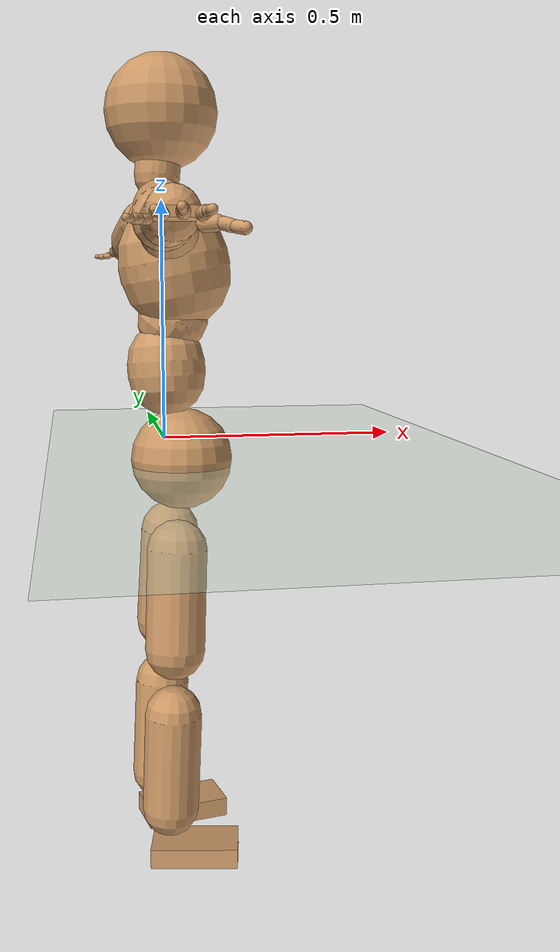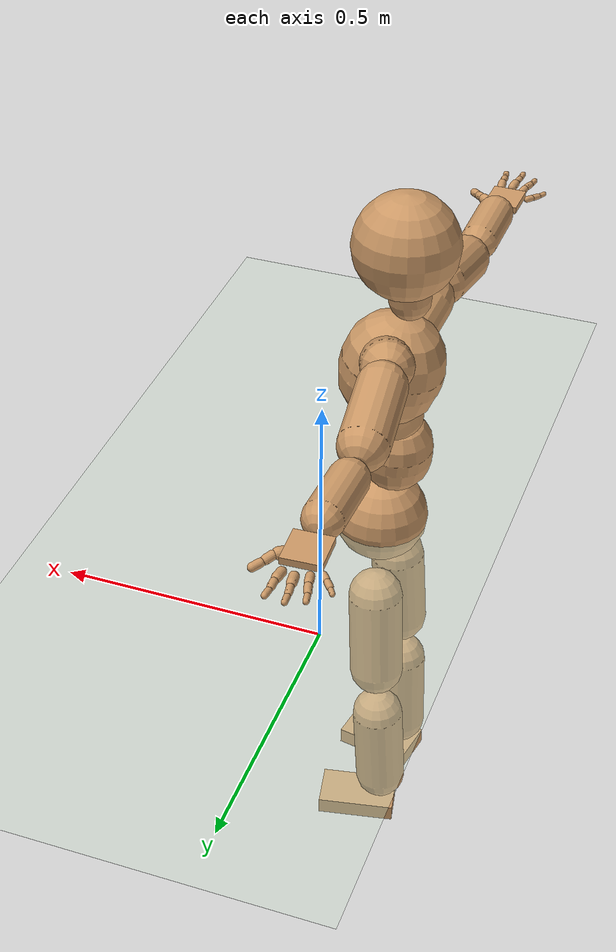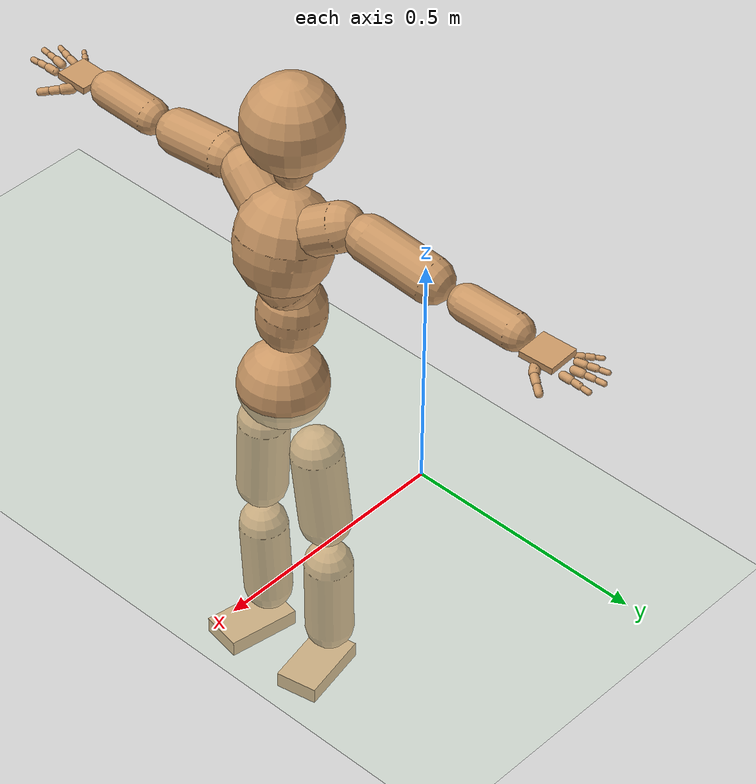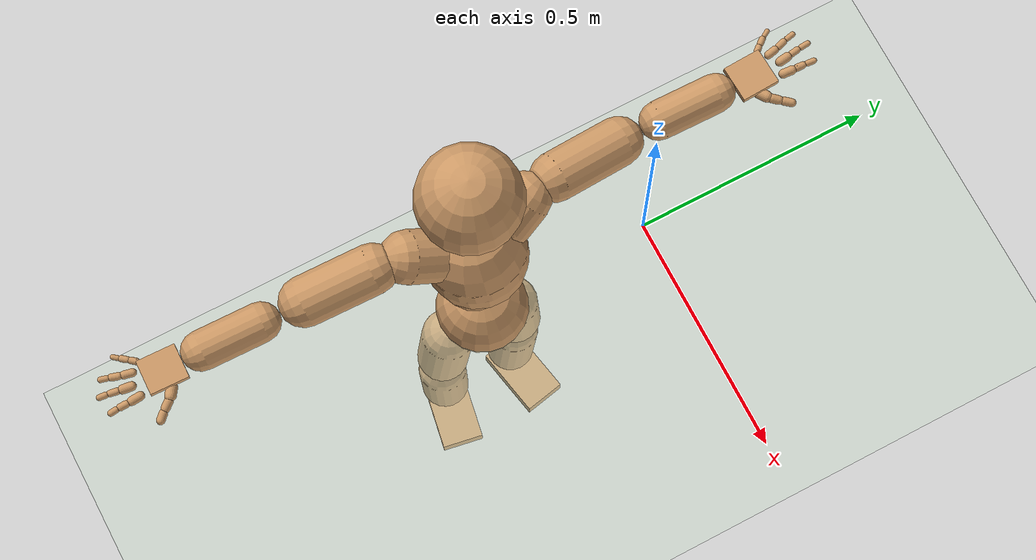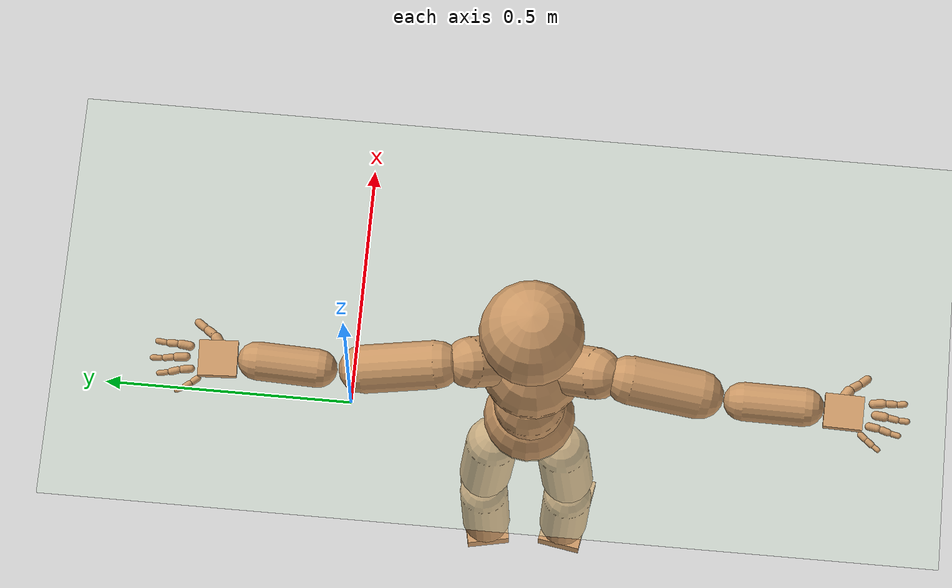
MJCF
<mujoco model="humanoid">
  <compiler coordinate="local" angle="radian"/>
  <default>
    <joint damping="0.0" armature="0.01" stiffness="0.0" limited="true"/>
    <geom conaffinity="1" condim="3" contype="7" margin="0.001" rgba="0.8 0.6 .4 1"/>
  </default>
  <asset>
    <texture type="skybox" builtin="gradient" rgb1=".4 .5 .6" rgb2="0 0 0" width="100" height="100"/>
    <texture builtin="flat" height="1278" mark="cross" markrgb="1 1 1" name="texgeom" random="0.01" rgb1="0.8 0.6 0.4" rgb2="0.8 0.6 0.4" type="cube" width="127"/>
    <texture builtin="checker" height="100" name="texplane" rgb1="0 0 0" rgb2="0.8 0.8 0.8" type="2d" width="100"/>
    <material name="MatPlane" reflectance="0.5" shininess="1" specular="1" texrepeat="60 60" texture="texplane"/>
    <material name="geom" texture="texgeom" texuniform="true"/>
  </asset>
  <worldbody>
    <light cutoff="100" diffuse="1 1 1" dir="-0 0 -1.3" directional="true" exponent="1" pos="0 0 1.3" specular=".1 .1 .1"/>
    <geom conaffinity="1" condim="3" name="floor" pos="0 0 0" rgba="0.8 0.9 0.8 1" size="100 100 .2" type="plane" material="MatPlane"/>
    <body name="Pelvis" pos="0.0005 -0.3611 0.0106">
      <freejoint name="Pelvis"/>
      <geom type="sphere" contype="1" conaffinity="1" density="500" size="0.0924" pos="0.0000 0.0000 0.0000" name="Pelvis"/>
      <body name="L_Hip" pos="-0.0134 0.068 -0.0869">
        <joint name="L_Hip_x" type="hinge" pos="0 0 0" axis="1 0 0" stiffness="800" damping="80" armature="0.02" range="-180.0000 180.0000"/>
        <joint name="L_Hip_y" type="hinge" pos="0 0 0" axis="0 1 0" stiffness="800" damping="80" armature="0.02" range="-180.0000 180.0000"/>
        <joint name="L_Hip_z" type="hinge" pos="0 0 0" axis="0 0 1" stiffness="800" damping="80" armature="0.02" range="-180.0000 180.0000"/>
        <geom type="capsule" contype="1" conaffinity="1" density="500" fromto="-0.0037 0.0043 -0.0612 -0.0147 0.0172 -0.2447" size="0.054" name="L_Hip"/>
        <body name="L_Knee" pos="-0.0184 0.0215 -0.3059">
          <joint name="L_Knee_x" type="hinge" pos="0 0 0" axis="1 0 0" stiffness="800" damping="80" armature="0.02" range="-180.0000 180.0000"/>
          <joint name="L_Knee_y" type="hinge" pos="0 0 0" axis="0 1 0" stiffness="800" damping="80" armature="0.02" range="-180.0000 180.0000"/>
          <joint name="L_Knee_z" type="hinge" pos="0 0 0" axis="0 0 1" stiffness="800" damping="80" armature="0.02" range="-180.0000 180.0000"/>
          <geom type="capsule" contype="1" conaffinity="1" density="500" fromto="-0.0031 -0.0023 -0.0619 -0.0124 -0.0090 -0.2477" size="0.0512" name="L_Knee"/>
          <body name="L_Ankle" pos="-0.0154 -0.0113 -0.3097">
            <joint name="L_Ankle_x" type="hinge" pos="0 0 0" axis="1 0 0" stiffness="800" damping="80" armature="0.02" range="-180.0000 180.0000"/>
            <joint name="L_Ankle_y" type="hinge" pos="0 0 0" axis="0 1 0" stiffness="800" damping="80" armature="0.02" range="-180.0000 180.0000"/>
            <joint name="L_Ankle_z" type="hinge" pos="0 0 0" axis="0 0 1" stiffness="800" damping="80" armature="0.02" range="-180.0000 180.0000"/>
            <geom type="box" contype="1" conaffinity="1" density="500" pos="0.0495 0.0099 -0.0182" size="0.0789 0.0451 0.018" quat="0.9951 0.0000 0.0000 0.0989" name="L_Ankle"/>
            <body name="L_Toe" pos="0.099 0.0199 -0.0365">
              <joint name="L_Toe_x" type="hinge" pos="0 0 0" axis="1 0 0" stiffness="500" damping="50" armature="0.02" range="-180.0000 180.0000"/>
              <joint name="L_Toe_y" type="hinge" pos="0 0 0" axis="0 1 0" stiffness="500" damping="50" armature="0.02" range="-180.0000 180.0000"/>
              <joint name="L_Toe_z" type="hinge" pos="0 0 0" axis="0 0 1" stiffness="500" damping="50" armature="0.02" range="-180.0000 180.0000"/>
              <geom type="box" contype="1" conaffinity="1" density="500" pos="0.0000 0.0000 0.0199" size="0.0009 0.0023 0.001" quat="0.9943 0.0000 0.0000 0.1064" name="L_Toe"/>
            </body>
          </body>
        </body>
      </body>
      <body name="R_Hip" pos="-0.0147 -0.0671 -0.0935">
        <joint name="R_Hip_x" type="hinge" pos="0 0 0" axis="1 0 0" stiffness="800" damping="80" armature="0.02" range="-180.0000 180.0000"/>
        <joint name="R_Hip_y" type="hinge" pos="0 0 0" axis="0 1 0" stiffness="800" damping="80" armature="0.02" range="-180.0000 180.0000"/>
        <joint name="R_Hip_z" type="hinge" pos="0 0 0" axis="0 0 1" stiffness="800" damping="80" armature="0.02" range="-180.0000 180.0000"/>
        <geom type="capsule" contype="1" conaffinity="1" density="500" fromto="-0.0025 -0.0051 -0.0602 -0.0101 -0.0203 -0.2410" size="0.0538" name="R_Hip"/>
        <body name="R_Knee" pos="-0.0126 -0.0253 -0.3012">
          <joint name="R_Knee_x" type="hinge" pos="0 0 0" axis="1 0 0" stiffness="800" damping="80" armature="0.02" range="-180.0000 180.0000"/>
          <joint name="R_Knee_y" type="hinge" pos="0 0 0" axis="0 1 0" stiffness="800" damping="80" armature="0.02" range="-180.0000 180.0000"/>
          <joint name="R_Knee_z" type="hinge" pos="0 0 0" axis="0 0 1" stiffness="800" damping="80" armature="0.02" range="-180.0000 180.0000"/>
          <geom type="capsule" contype="1" conaffinity="1" density="500" fromto="-0.0023 0.0014 -0.0603 -0.0092 0.0055 -0.2413" size="0.0512" name="R_Knee"/>
          <body name="R_Ankle" pos="-0.0115 0.0069 -0.3017">
            <joint name="R_Ankle_x" type="hinge" pos="0 0 0" axis="1 0 0" stiffness="800" damping="80" armature="0.02" range="-180.0000 180.0000"/>
            <joint name="R_Ankle_y" type="hinge" pos="0 0 0" axis="0 1 0" stiffness="800" damping="80" armature="0.02" range="-180.0000 180.0000"/>
            <joint name="R_Ankle_z" type="hinge" pos="0 0 0" axis="0 0 1" stiffness="800" damping="80" armature="0.02" range="-180.0000 180.0000"/>
            <geom type="box" contype="1" conaffinity="1" density="500" pos="0.0464 -0.0081 -0.0200" size="0.0789 0.0451 0.018" quat="0.9963 0.0000 0.0000 -0.0861" name="R_Ankle"/>
            <body name="R_Toe" pos="0.0928 -0.0162 -0.04">
              <joint name="R_Toe_x" type="hinge" pos="0 0 0" axis="1 0 0" stiffness="500" damping="50" armature="0.02" range="-180.0000 180.0000"/>
              <joint name="R_Toe_y" type="hinge" pos="0 0 0" axis="0 1 0" stiffness="500" damping="50" armature="0.02" range="-180.0000 180.0000"/>
              <joint name="R_Toe_z" type="hinge" pos="0 0 0" axis="0 0 1" stiffness="500" damping="50" armature="0.02" range="-180.0000 180.0000"/>
              <geom type="box" contype="1" conaffinity="1" density="500" pos="0.0000 0.0000 0.0216" size="0.0009 0.0023 0.001" quat="0.9973 0.0000 0.0000 -0.0741" name="R_Toe"/>
            </body>
          </body>
        </body>
      </body>
      <body name="Torso" pos="-0.0222 -0.0048 0.0978">
        <joint name="Torso_x" type="hinge" pos="0 0 0" axis="1 0 0" stiffness="1000" damping="100" armature="0.02" range="-180.0000 180.0000"/>
        <joint name="Torso_y" type="hinge" pos="0 0 0" axis="0 1 0" stiffness="1000" damping="100" armature="0.02" range="-180.0000 180.0000"/>
        <joint name="Torso_z" type="hinge" pos="0 0 0" axis="0 0 1" stiffness="1000" damping="100" armature="0.02" range="-180.0000 180.0000"/>
        <geom type="capsule" contype="1" conaffinity="1" density="500" fromto="-0.0041 0.0056 0.0789 -0.0027 0.0037 0.0526" size="0.0701" name="Torso"/>
        <body name="Spine" pos="-0.0069 0.0093 0.1315">
          <joint name="Spine_x" type="hinge" pos="0 0 0" axis="1 0 0" stiffness="1000" damping="100" armature="0.02" range="-180.0000 180.0000"/>
          <joint name="Spine_y" type="hinge" pos="0 0 0" axis="0 1 0" stiffness="1000" damping="100" armature="0.02" range="-180.0000 180.0000"/>
          <joint name="Spine_z" type="hinge" pos="0 0 0" axis="0 0 1" stiffness="1000" damping="100" armature="0.02" range="-180.0000 180.0000"/>
          <geom type="capsule" contype="1" conaffinity="1" density="500" fromto="0.0203 -0.0032 0.0274 0.0135 -0.0021 0.0183" size="0.0605" name="Spine"/>
          <body name="Chest" pos="0.0339 -0.0054 0.0457">
            <joint name="Chest_x" type="hinge" pos="0 0 0" axis="1 0 0" stiffness="1000" damping="100" armature="0.02" range="-180.0000 180.0000"/>
            <joint name="Chest_y" type="hinge" pos="0 0 0" axis="0 1 0" stiffness="1000" damping="100" armature="0.02" range="-180.0000 180.0000"/>
            <joint name="Chest_z" type="hinge" pos="0 0 0" axis="0 0 1" stiffness="1000" damping="100" armature="0.02" range="-180.0000 180.0000"/>
            <geom type="capsule" contype="1" conaffinity="1" density="500" fromto="-0.0175 -0.0016 0.0847 -0.0117 -0.0011 0.0565" size="0.0984" name="Chest"/>
            <body name="Neck" pos="-0.0451 -0.0057 0.195">
              <joint name="Neck_x" type="hinge" pos="0 0 0" axis="1 0 0" stiffness="500" damping="50" armature="0.02" range="-180.0000 180.0000"/>
              <joint name="Neck_y" type="hinge" pos="0 0 0" axis="0 1 0" stiffness="500" damping="50" armature="0.02" range="-180.0000 180.0000"/>
              <joint name="Neck_z" type="hinge" pos="0 0 0" axis="0 0 1" stiffness="500" damping="50" armature="0.02" range="-180.0000 180.0000"/>
              <geom type="capsule" contype="1" conaffinity="1" density="500" fromto="0.0023 0.0018 0.0276 0.0093 0.0071 0.1105" size="0.0398" name="Neck"/>
              <body name="Head" pos="0.0116 0.0089 0.1381">
                <joint name="Head_x" type="hinge" pos="0 0 0" axis="1 0 0" stiffness="500" damping="50" armature="0.02" range="-180.0000 180.0000"/>
                <joint name="Head_y" type="hinge" pos="0 0 0" axis="0 1 0" stiffness="500" damping="50" armature="0.02" range="-180.0000 180.0000"/>
                <joint name="Head_z" type="hinge" pos="0 0 0" axis="0 0 1" stiffness="500" damping="50" armature="0.02" range="-180.0000 180.0000"/>
                <geom type="sphere" contype="1" conaffinity="1" density="500" size="0.0990" pos="0.0000 0.0000 0.0000" name="Head"/>
              </body>
            </body>
            <body name="L_Thorax" pos="-0.0183 0.0513 0.1162">
              <joint name="L_Thorax_x" type="hinge" pos="0 0 0" axis="1 0 0" stiffness="500" damping="50" armature="0.02" range="-180.0000 180.0000"/>
              <joint name="L_Thorax_y" type="hinge" pos="0 0 0" axis="0 1 0" stiffness="500" damping="50" armature="0.02" range="-180.0000 180.0000"/>
              <joint name="L_Thorax_z" type="hinge" pos="0 0 0" axis="0 0 1" stiffness="500" damping="50" armature="0.02" range="-180.0000 180.0000"/>
              <geom type="capsule" contype="1" conaffinity="1" density="500" fromto="-0.0058 0.0165 0.0092 -0.0231 0.0659 0.0368" size="0.0493" name="L_Thorax"/>
              <body name="L_Shoulder" pos="-0.0289 0.0823 0.0461">
                <joint name="L_Shoulder_x" type="hinge" pos="0 0 0" axis="1 0 0" stiffness="500" damping="50" armature="0.02" range="-180.0000 180.0000"/>
                <joint name="L_Shoulder_y" type="hinge" pos="0 0 0" axis="0 1 0" stiffness="500" damping="50" armature="0.02" range="-180.0000 180.0000"/>
                <joint name="L_Shoulder_z" type="hinge" pos="0 0 0" axis="0 0 1" stiffness="500" damping="50" armature="0.02" range="-180.0000 180.0000"/>
                <geom type="capsule" contype="1" conaffinity="1" density="500" fromto="-0.0045 0.0468 -0.0086 -0.0181 0.1871 -0.0346" size="0.0468" name="L_Shoulder"/>
                <body name="L_Elbow" pos="-0.0226 0.2338 -0.0432">
                  <joint name="L_Elbow_x" type="hinge" pos="0 0 0" axis="1 0 0" stiffness="500" damping="50" armature="0.02" range="-720.0000 720.0000"/>
                  <joint name="L_Elbow_y" type="hinge" pos="0 0 0" axis="0 1 0" stiffness="500" damping="50" armature="0.02" range="-720.0000 720.0000"/>
                  <joint name="L_Elbow_z" type="hinge" pos="0 0 0" axis="0 0 1" stiffness="500" damping="50" armature="0.02" range="-720.0000 720.0000"/>
                  <geom type="capsule" contype="1" conaffinity="1" density="500" fromto="0.0010 0.0392 0.0015 0.0042 0.1567 0.0058" size="0.0371" name="L_Elbow"/>
                  <body name="L_Wrist" pos="0.0052 0.1958 0.0073">
                    <joint name="L_Wrist_x" type="hinge" pos="0 0 0" axis="1 0 0" stiffness="300" damping="30" armature="0.02" range="-180.0000 180.0000"/>
                    <joint name="L_Wrist_y" type="hinge" pos="0 0 0" axis="0 1 0" stiffness="300" damping="30" armature="0.02" range="-180.0000 180.0000"/>
                    <joint name="L_Wrist_z" type="hinge" pos="0 0 0" axis="0 0 1" stiffness="300" damping="30" armature="0.02" range="-180.0000 180.0000"/>
                    <geom type="box" contype="1" conaffinity="1" density="500" pos="-0.0017 0.0364 -0.0075" size="0.0374 0.0356 0.0068" quat="0.7237 0.0000 0.0000 -0.6901" name="L_Wrist"/>
                    <body name="L_Index1" pos="0.0203 0.0868 -0.013">
                      <joint name="L_Index1_x" type="hinge" pos="0 0 0" axis="1 0 0" stiffness="100" damping="10" armature="0.02" range="-180.0000 180.0000"/>
                      <joint name="L_Index1_y" type="hinge" pos="0 0 0" axis="0 1 0" stiffness="100" damping="10" armature="0.02" range="-180.0000 180.0000"/>
                      <joint name="L_Index1_z" type="hinge" pos="0 0 0" axis="0 0 1" stiffness="100" damping="10" armature="0.02" range="-180.0000 180.0000"/>
                      <geom type="capsule" contype="1" conaffinity="1" density="500" fromto="0.0005 0.0059 0.0005 0.0022 0.0235 0.0021" size="0.0086" name="L_Index1"/>
                      <body name="L_Index2" pos="0.0027 0.0294 0.0026">
                        <joint name="L_Index2_x" type="hinge" pos="0 0 0" axis="1 0 0" stiffness="100" damping="10" armature="0.02" range="-180.0000 180.0000"/>
                        <joint name="L_Index2_y" type="hinge" pos="0 0 0" axis="0 1 0" stiffness="100" damping="10" armature="0.02" range="-180.0000 180.0000"/>
                        <joint name="L_Index2_z" type="hinge" pos="0 0 0" axis="0 0 1" stiffness="100" damping="10" armature="0.02" range="-180.0000 180.0000"/>
                        <geom type="capsule" contype="1" conaffinity="1" density="500" fromto="0.0001 0.0042 -0.0003 0.0002 0.0166 -0.0010" size="0.007" name="L_Index2"/>
                        <body name="L_Index3" pos="0.0003 0.0208 -0.0013">
                          <joint name="L_Index3_x" type="hinge" pos="0 0 0" axis="1 0 0" stiffness="100" damping="10" armature="0.02" range="-180.0000 180.0000"/>
                          <joint name="L_Index3_y" type="hinge" pos="0 0 0" axis="0 1 0" stiffness="100" damping="10" armature="0.02" range="-180.0000 180.0000"/>
                          <joint name="L_Index3_z" type="hinge" pos="0 0 0" axis="0 0 1" stiffness="100" damping="10" armature="0.02" range="-180.0000 180.0000"/>
                          <geom type="capsule" contype="1" conaffinity="1" density="500" fromto="0.0005 0.0046 0.0001 0.0018 0.0182 0.0006" size="0.0058" name="L_Index3"/>
                        </body>
                      </body>
                    </body>
                    <body name="L_Middle1" pos="-0.0013 0.093 -0.0109">
                      <joint name="L_Middle1_x" type="hinge" pos="0 0 0" axis="1 0 0" stiffness="100" damping="10" armature="0.02" range="-180.0000 180.0000"/>
                      <joint name="L_Middle1_y" type="hinge" pos="0 0 0" axis="0 1 0" stiffness="100" damping="10" armature="0.02" range="-180.0000 180.0000"/>
                      <joint name="L_Middle1_z" type="hinge" pos="0 0 0" axis="0 0 1" stiffness="100" damping="10" armature="0.02" range="-180.0000 180.0000"/>
                      <geom type="capsule" contype="1" conaffinity="1" density="500" fromto="-0.0007 0.0056 0.0002 -0.0028 0.0223 0.0010" size="0.0088" name="L_Middle1"/>
                      <body name="L_Middle2" pos="-0.0035 0.0279 0.0012">
                        <joint name="L_Middle2_x" type="hinge" pos="0 0 0" axis="1 0 0" stiffness="100" damping="10" armature="0.02" range="-180.0000 180.0000"/>
                        <joint name="L_Middle2_y" type="hinge" pos="0 0 0" axis="0 1 0" stiffness="100" damping="10" armature="0.02" range="-180.0000 180.0000"/>
                        <joint name="L_Middle2_z" type="hinge" pos="0 0 0" axis="0 0 1" stiffness="100" damping="10" armature="0.02" range="-180.0000 180.0000"/>
                        <geom type="capsule" contype="1" conaffinity="1" density="500" fromto="-0.0007 0.0043 -0.0001 -0.0028 0.0172 -0.0005" size="0.0065" name="L_Middle2"/>
                        <body name="L_Middle3" pos="-0.0035 0.0216 -0.0006">
                          <joint name="L_Middle3_x" type="hinge" pos="0 0 0" axis="1 0 0" stiffness="100" damping="10" armature="0.02" range="-180.0000 180.0000"/>
                          <joint name="L_Middle3_y" type="hinge" pos="0 0 0" axis="0 1 0" stiffness="100" damping="10" armature="0.02" range="-180.0000 180.0000"/>
                          <joint name="L_Middle3_z" type="hinge" pos="0 0 0" axis="0 0 1" stiffness="100" damping="10" armature="0.02" range="-180.0000 180.0000"/>
                          <geom type="capsule" contype="1" conaffinity="1" density="500" fromto="-0.0003 0.0047 0.0003 -0.0012 0.0188 0.0011" size="0.0056" name="L_Middle3"/>
                        </body>
                      </body>
                    </body>
                    <body name="L_Pinky1" pos="-0.0388 0.0694 -0.0178">
                      <joint name="L_Pinky1_x" type="hinge" pos="0 0 0" axis="1 0 0" stiffness="100" damping="10" armature="0.02" range="-180.0000 180.0000"/>
                      <joint name="L_Pinky1_y" type="hinge" pos="0 0 0" axis="0 1 0" stiffness="100" damping="10" armature="0.02" range="-180.0000 180.0000"/>
                      <joint name="L_Pinky1_z" type="hinge" pos="0 0 0" axis="0 0 1" stiffness="100" damping="10" armature="0.02" range="-180.0000 180.0000"/>
                      <geom type="capsule" contype="1" conaffinity="1" density="500" fromto="-0.0023 0.0027 -0.0001 -0.0091 0.0108 -0.0004" size="0.0064" name="L_Pinky1"/>
                      <body name="L_Pinky2" pos="-0.0113 0.0135 -0.0004">
                        <joint name="L_Pinky2_x" type="hinge" pos="0 0 0" axis="1 0 0" stiffness="100" damping="10" armature="0.02" range="-180.0000 180.0000"/>
                        <joint name="L_Pinky2_y" type="hinge" pos="0 0 0" axis="0 1 0" stiffness="100" damping="10" armature="0.02" range="-180.0000 180.0000"/>
                        <joint name="L_Pinky2_z" type="hinge" pos="0 0 0" axis="0 0 1" stiffness="100" damping="10" armature="0.02" range="-180.0000 180.0000"/>
                        <geom type="capsule" contype="1" conaffinity="1" density="500" fromto="-0.0022 0.0028 -0.0002 -0.0088 0.0111 -0.0007" size="0.0062" name="L_Pinky2"/>
                        <body name="L_Pinky3" pos="-0.0109 0.0139 -0.0009">
                          <joint name="L_Pinky3_x" type="hinge" pos="0 0 0" axis="1 0 0" stiffness="100" damping="10" armature="0.02" range="-180.0000 180.0000"/>
                          <joint name="L_Pinky3_y" type="hinge" pos="0 0 0" axis="0 1 0" stiffness="100" damping="10" armature="0.02" range="-180.0000 180.0000"/>
                          <joint name="L_Pinky3_z" type="hinge" pos="0 0 0" axis="0 0 1" stiffness="100" damping="10" armature="0.02" range="-180.0000 180.0000"/>
                          <geom type="capsule" contype="1" conaffinity="1" density="500" fromto="-0.0018 0.0032 0.0002 -0.0072 0.0127 0.0009" size="0.0047" name="L_Pinky3"/>
                        </body>
                      </body>
                    </body>
                    <body name="L_Ring1" pos="-0.0234 0.0817 -0.0131">
                      <joint name="L_Ring1_x" type="hinge" pos="0 0 0" axis="1 0 0" stiffness="100" damping="10" armature="0.02" range="-180.0000 180.0000"/>
                      <joint name="L_Ring1_y" type="hinge" pos="0 0 0" axis="0 1 0" stiffness="100" damping="10" armature="0.02" range="-180.0000 180.0000"/>
                      <joint name="L_Ring1_z" type="hinge" pos="0 0 0" axis="0 0 1" stiffness="100" damping="10" armature="0.02" range="-180.0000 180.0000"/>
                      <geom type="capsule" contype="1" conaffinity="1" density="500" fromto="-0.0010 0.0051 0.0003 -0.0040 0.0204 0.0013" size="0.0077" name="L_Ring1"/>
                      <body name="L_Ring2" pos="-0.005 0.0254 0.0017">
                        <joint name="L_Ring2_x" type="hinge" pos="0 0 0" axis="1 0 0" stiffness="100" damping="10" armature="0.02" range="-180.0000 180.0000"/>
                        <joint name="L_Ring2_y" type="hinge" pos="0 0 0" axis="0 1 0" stiffness="100" damping="10" armature="0.02" range="-180.0000 180.0000"/>
                        <joint name="L_Ring2_z" type="hinge" pos="0 0 0" axis="0 0 1" stiffness="100" damping="10" armature="0.02" range="-180.0000 180.0000"/>
                        <geom type="capsule" contype="1" conaffinity="1" density="500" fromto="-0.0013 0.0042 -0.0002 -0.0053 0.0166 -0.0007" size="0.007" name="L_Ring2"/>
                        <body name="L_Ring3" pos="-0.0067 0.0208 -0.0009">
                          <joint name="L_Ring3_x" type="hinge" pos="0 0 0" axis="1 0 0" stiffness="100" damping="10" armature="0.02" range="-180.0000 180.0000"/>
                          <joint name="L_Ring3_y" type="hinge" pos="0 0 0" axis="0 1 0" stiffness="100" damping="10" armature="0.02" range="-180.0000 180.0000"/>
                          <joint name="L_Ring3_z" type="hinge" pos="0 0 0" axis="0 0 1" stiffness="100" damping="10" armature="0.02" range="-180.0000 180.0000"/>
                          <geom type="capsule" contype="1" conaffinity="1" density="500" fromto="-0.0009 0.0046 0.0002 -0.0037 0.0182 0.0009" size="0.0054" name="L_Ring3"/>
                        </body>
                      </body>
                    </body>
                    <body name="L_Thumb1" pos="0.0258 0.0335 -0.0199">
                      <joint name="L_Thumb1_x" type="hinge" pos="0 0 0" axis="1 0 0" stiffness="100" damping="10" armature="0.02" range="-180.0000 180.0000"/>
                      <joint name="L_Thumb1_y" type="hinge" pos="0 0 0" axis="0 1 0" stiffness="100" damping="10" armature="0.02" range="-180.0000 180.0000"/>
                      <joint name="L_Thumb1_z" type="hinge" pos="0 0 0" axis="0 0 1" stiffness="100" damping="10" armature="0.02" range="-180.0000 180.0000"/>
                      <geom type="capsule" contype="1" conaffinity="1" density="500" fromto="0.0045 0.0030 0.0002 0.0180 0.0120 0.0008" size="0.0109" name="L_Thumb1"/>
                      <body name="L_Thumb2" pos="0.0225 0.015 0.0011">
                        <joint name="L_Thumb2_x" type="hinge" pos="0 0 0" axis="1 0 0" stiffness="100" damping="10" armature="0.02" range="-180.0000 180.0000"/>
                        <joint name="L_Thumb2_y" type="hinge" pos="0 0 0" axis="0 1 0" stiffness="100" damping="10" armature="0.02" range="-180.0000 180.0000"/>
                        <joint name="L_Thumb2_z" type="hinge" pos="0 0 0" axis="0 0 1" stiffness="100" damping="10" armature="0.02" range="-180.0000 180.0000"/>
                        <geom type="capsule" contype="1" conaffinity="1" density="500" fromto="0.0027 0.0037 -0.0011 0.0107 0.0146 -0.0043" size="0.0086" name="L_Thumb2"/>
                        <body name="L_Thumb3" pos="0.0133 0.0183 -0.0054">
                          <joint name="L_Thumb3_x" type="hinge" pos="0 0 0" axis="1 0 0" stiffness="100" damping="10" armature="0.02" range="-180.0000 180.0000"/>
                          <joint name="L_Thumb3_y" type="hinge" pos="0 0 0" axis="0 1 0" stiffness="100" damping="10" armature="0.02" range="-180.0000 180.0000"/>
                          <joint name="L_Thumb3_z" type="hinge" pos="0 0 0" axis="0 0 1" stiffness="100" damping="10" armature="0.02" range="-180.0000 180.0000"/>
                          <geom type="capsule" contype="1" conaffinity="1" density="500" fromto="0.0031 0.0041 -0.0007 0.0123 0.0162 -0.0027" size="0.008" name="L_Thumb3"/>
                        </body>
                      </body>
                    </body>
                  </body>
                </body>
              </body>
            </body>
            <body name="R_Thorax" pos="-0.0241 -0.0536 0.1123">
              <joint name="R_Thorax_x" type="hinge" pos="0 0 0" axis="1 0 0" stiffness="500" damping="50" armature="0.02" range="-180.0000 180.0000"/>
              <joint name="R_Thorax_y" type="hinge" pos="0 0 0" axis="0 1 0" stiffness="500" damping="50" armature="0.02" range="-180.0000 180.0000"/>
              <joint name="R_Thorax_z" type="hinge" pos="0 0 0" axis="0 0 1" stiffness="500" damping="50" armature="0.02" range="-180.0000 180.0000"/>
              <geom type="capsule" contype="1" conaffinity="1" density="500" fromto="-0.0045 -0.0177 0.0100 -0.0181 -0.0709 0.0399" size="0.0504" name="R_Thorax"/>
              <body name="R_Shoulder" pos="-0.0227 -0.0886 0.0499">
                <joint name="R_Shoulder_x" type="hinge" pos="0 0 0" axis="1 0 0" stiffness="500" damping="50" armature="0.02" range="-180.0000 180.0000"/>
                <joint name="R_Shoulder_y" type="hinge" pos="0 0 0" axis="0 1 0" stiffness="500" damping="50" armature="0.02" range="-180.0000 180.0000"/>
                <joint name="R_Shoulder_z" type="hinge" pos="0 0 0" axis="0 0 1" stiffness="500" damping="50" armature="0.02" range="-180.0000 180.0000"/>
                <geom type="capsule" contype="1" conaffinity="1" density="500" fromto="-0.0032 -0.0449 -0.0080 -0.0129 -0.1798 -0.0319" size="0.0473" name="R_Shoulder"/>
                <body name="R_Elbow" pos="-0.0161 -0.2247 -0.0399">
                  <joint name="R_Elbow_x" type="hinge" pos="0 0 0" axis="1 0 0" stiffness="500" damping="50" armature="0.02" range="-720.0000 720.0000"/>
                  <joint name="R_Elbow_y" type="hinge" pos="0 0 0" axis="0 1 0" stiffness="500" damping="50" armature="0.02" range="-720.0000 720.0000"/>
                  <joint name="R_Elbow_z" type="hinge" pos="0 0 0" axis="0 0 1" stiffness="500" damping="50" armature="0.02" range="-720.0000 720.0000"/>
                  <geom type="capsule" contype="1" conaffinity="1" density="500" fromto="-0.0006 -0.0393 0.0006 -0.0024 -0.1571 0.0024" size="0.0373" name="R_Elbow"/>
                  <body name="R_Wrist" pos="-0.0031 -0.1964 0.003">
                    <joint name="R_Wrist_x" type="hinge" pos="0 0 0" axis="1 0 0" stiffness="300" damping="30" armature="0.02" range="-180.0000 180.0000"/>
                    <joint name="R_Wrist_y" type="hinge" pos="0 0 0" axis="0 1 0" stiffness="300" damping="30" armature="0.02" range="-180.0000 180.0000"/>
                    <joint name="R_Wrist_z" type="hinge" pos="0 0 0" axis="0 0 1" stiffness="300" damping="30" armature="0.02" range="-180.0000 180.0000"/>
                    <geom type="box" contype="1" conaffinity="1" density="500" pos="-0.0010 -0.0360 -0.0070" size="0.0374 0.0336 0.007" quat="0.7171 0.0000 0.0000 0.6969" name="R_Wrist"/>
                    <body name="R_Index1" pos="0.0217 -0.086 -0.0121">
                      <joint name="R_Index1_x" type="hinge" pos="0 0 0" axis="1 0 0" stiffness="100" damping="10" armature="0.02" range="-180.0000 180.0000"/>
                      <joint name="R_Index1_y" type="hinge" pos="0 0 0" axis="0 1 0" stiffness="100" damping="10" armature="0.02" range="-180.0000 180.0000"/>
                      <joint name="R_Index1_z" type="hinge" pos="0 0 0" axis="0 0 1" stiffness="100" damping="10" armature="0.02" range="-180.0000 180.0000"/>
                      <geom type="capsule" contype="1" conaffinity="1" density="500" fromto="0.0005 -0.0059 0.0005 0.0022 -0.0235 0.0021" size="0.0086" name="R_Index1"/>
                      <body name="R_Index2" pos="0.0027 -0.0294 0.0026">
                        <joint name="R_Index2_x" type="hinge" pos="0 0 0" axis="1 0 0" stiffness="100" damping="10" armature="0.02" range="-180.0000 180.0000"/>
                        <joint name="R_Index2_y" type="hinge" pos="0 0 0" axis="0 1 0" stiffness="100" damping="10" armature="0.02" range="-180.0000 180.0000"/>
                        <joint name="R_Index2_z" type="hinge" pos="0 0 0" axis="0 0 1" stiffness="100" damping="10" armature="0.02" range="-180.0000 180.0000"/>
                        <geom type="capsule" contype="1" conaffinity="1" density="500" fromto="0.0001 -0.0042 -0.0003 0.0002 -0.0166 -0.0010" size="0.007" name="R_Index2"/>
                        <body name="R_Index3" pos="0.0003 -0.0208 -0.0013">
                          <joint name="R_Index3_x" type="hinge" pos="0 0 0" axis="1 0 0" stiffness="100" damping="10" armature="0.02" range="-180.0000 180.0000"/>
                          <joint name="R_Index3_y" type="hinge" pos="0 0 0" axis="0 1 0" stiffness="100" damping="10" armature="0.02" range="-180.0000 180.0000"/>
                          <joint name="R_Index3_z" type="hinge" pos="0 0 0" axis="0 0 1" stiffness="100" damping="10" armature="0.02" range="-180.0000 180.0000"/>
                          <geom type="capsule" contype="1" conaffinity="1" density="500" fromto="0.0005 -0.0038 0.0001 0.0018 -0.0150 0.0006" size="0.0061" name="R_Index3"/>
                        </body>
                      </body>
                    </body>
                    <body name="R_Middle1" pos="0.0001 -0.0922 -0.01">
                      <joint name="R_Middle1_x" type="hinge" pos="0 0 0" axis="1 0 0" stiffness="100" damping="10" armature="0.02" range="-180.0000 180.0000"/>
                      <joint name="R_Middle1_y" type="hinge" pos="0 0 0" axis="0 1 0" stiffness="100" damping="10" armature="0.02" range="-180.0000 180.0000"/>
                      <joint name="R_Middle1_z" type="hinge" pos="0 0 0" axis="0 0 1" stiffness="100" damping="10" armature="0.02" range="-180.0000 180.0000"/>
                      <geom type="capsule" contype="1" conaffinity="1" density="500" fromto="-0.0007 -0.0056 0.0002 -0.0028 -0.0223 0.0010" size="0.0088" name="R_Middle1"/>
                      <body name="R_Middle2" pos="-0.0035 -0.0279 0.0012">
                        <joint name="R_Middle2_x" type="hinge" pos="0 0 0" axis="1 0 0" stiffness="100" damping="10" armature="0.02" range="-180.0000 180.0000"/>
                        <joint name="R_Middle2_y" type="hinge" pos="0 0 0" axis="0 1 0" stiffness="100" damping="10" armature="0.02" range="-180.0000 180.0000"/>
                        <joint name="R_Middle2_z" type="hinge" pos="0 0 0" axis="0 0 1" stiffness="100" damping="10" armature="0.02" range="-180.0000 180.0000"/>
                        <geom type="capsule" contype="1" conaffinity="1" density="500" fromto="-0.0007 -0.0043 -0.0001 -0.0028 -0.0172 -0.0005" size="0.0065" name="R_Middle2"/>
                        <body name="R_Middle3" pos="-0.0035 -0.0216 -0.0006">
                          <joint name="R_Middle3_x" type="hinge" pos="0 0 0" axis="1 0 0" stiffness="100" damping="10" armature="0.02" range="-180.0000 180.0000"/>
                          <joint name="R_Middle3_y" type="hinge" pos="0 0 0" axis="0 1 0" stiffness="100" damping="10" armature="0.02" range="-180.0000 180.0000"/>
                          <joint name="R_Middle3_z" type="hinge" pos="0 0 0" axis="0 0 1" stiffness="100" damping="10" armature="0.02" range="-180.0000 180.0000"/>
                          <geom type="capsule" contype="1" conaffinity="1" density="500" fromto="-0.0003 -0.0039 0.0003 -0.0012 -0.0156 0.0011" size="0.0059" name="R_Middle3"/>
                        </body>
                      </body>
                    </body>
                    <body name="R_Pinky1" pos="-0.0374 -0.0686 -0.0169">
                      <joint name="R_Pinky1_x" type="hinge" pos="0 0 0" axis="1 0 0" stiffness="100" damping="10" armature="0.02" range="-180.0000 180.0000"/>
                      <joint name="R_Pinky1_y" type="hinge" pos="0 0 0" axis="0 1 0" stiffness="100" damping="10" armature="0.02" range="-180.0000 180.0000"/>
                      <joint name="R_Pinky1_z" type="hinge" pos="0 0 0" axis="0 0 1" stiffness="100" damping="10" armature="0.02" range="-180.0000 180.0000"/>
                      <geom type="capsule" contype="1" conaffinity="1" density="500" fromto="-0.0023 -0.0027 -0.0001 -0.0091 -0.0108 -0.0004" size="0.0064" name="R_Pinky1"/>
                      <body name="R_Pinky2" pos="-0.0113 -0.0135 -0.0004">
                        <joint name="R_Pinky2_x" type="hinge" pos="0 0 0" axis="1 0 0" stiffness="100" damping="10" armature="0.02" range="-180.0000 180.0000"/>
                        <joint name="R_Pinky2_y" type="hinge" pos="0 0 0" axis="0 1 0" stiffness="100" damping="10" armature="0.02" range="-180.0000 180.0000"/>
                        <joint name="R_Pinky2_z" type="hinge" pos="0 0 0" axis="0 0 1" stiffness="100" damping="10" armature="0.02" range="-180.0000 180.0000"/>
                        <geom type="capsule" contype="1" conaffinity="1" density="500" fromto="-0.0022 -0.0028 -0.0002 -0.0088 -0.0111 -0.0007" size="0.0062" name="R_Pinky2"/>
                        <body name="R_Pinky3" pos="-0.0109 -0.0139 -0.0009">
                          <joint name="R_Pinky3_x" type="hinge" pos="0 0 0" axis="1 0 0" stiffness="100" damping="10" armature="0.02" range="-180.0000 180.0000"/>
                          <joint name="R_Pinky3_y" type="hinge" pos="0 0 0" axis="0 1 0" stiffness="100" damping="10" armature="0.02" range="-180.0000 180.0000"/>
                          <joint name="R_Pinky3_z" type="hinge" pos="0 0 0" axis="0 0 1" stiffness="100" damping="10" armature="0.02" range="-180.0000 180.0000"/>
                          <geom type="capsule" contype="1" conaffinity="1" density="500" fromto="-0.0018 -0.0024 0.0002 -0.0072 -0.0095 0.0009" size="0.0049" name="R_Pinky3"/>
                        </body>
                      </body>
                    </body>
                    <body name="R_Ring1" pos="-0.022 -0.0809 -0.0122">
                      <joint name="R_Ring1_x" type="hinge" pos="0 0 0" axis="1 0 0" stiffness="100" damping="10" armature="0.02" range="-180.0000 180.0000"/>
                      <joint name="R_Ring1_y" type="hinge" pos="0 0 0" axis="0 1 0" stiffness="100" damping="10" armature="0.02" range="-180.0000 180.0000"/>
                      <joint name="R_Ring1_z" type="hinge" pos="0 0 0" axis="0 0 1" stiffness="100" damping="10" armature="0.02" range="-180.0000 180.0000"/>
                      <geom type="capsule" contype="1" conaffinity="1" density="500" fromto="-0.0010 -0.0051 0.0003 -0.0040 -0.0204 0.0013" size="0.0077" name="R_Ring1"/>
                      <body name="R_Ring2" pos="-0.005 -0.0254 0.0017">
                        <joint name="R_Ring2_x" type="hinge" pos="0 0 0" axis="1 0 0" stiffness="100" damping="10" armature="0.02" range="-180.0000 180.0000"/>
                        <joint name="R_Ring2_y" type="hinge" pos="0 0 0" axis="0 1 0" stiffness="100" damping="10" armature="0.02" range="-180.0000 180.0000"/>
                        <joint name="R_Ring2_z" type="hinge" pos="0 0 0" axis="0 0 1" stiffness="100" damping="10" armature="0.02" range="-180.0000 180.0000"/>
                        <geom type="capsule" contype="1" conaffinity="1" density="500" fromto="-0.0013 -0.0042 -0.0002 -0.0053 -0.0166 -0.0007" size="0.007" name="R_Ring2"/>
                        <body name="R_Ring3" pos="-0.0067 -0.0208 -0.0009">
                          <joint name="R_Ring3_x" type="hinge" pos="0 0 0" axis="1 0 0" stiffness="100" damping="10" armature="0.02" range="-180.0000 180.0000"/>
                          <joint name="R_Ring3_y" type="hinge" pos="0 0 0" axis="0 1 0" stiffness="100" damping="10" armature="0.02" range="-180.0000 180.0000"/>
                          <joint name="R_Ring3_z" type="hinge" pos="0 0 0" axis="0 0 1" stiffness="100" damping="10" armature="0.02" range="-180.0000 180.0000"/>
                          <geom type="capsule" contype="1" conaffinity="1" density="500" fromto="-0.0009 -0.0038 0.0002 -0.0037 -0.0150 0.0009" size="0.0056" name="R_Ring3"/>
                        </body>
                      </body>
                    </body>
                    <body name="R_Thumb1" pos="0.0272 -0.0327 -0.019">
                      <joint name="R_Thumb1_x" type="hinge" pos="0 0 0" axis="1 0 0" stiffness="100" damping="10" armature="0.02" range="-180.0000 180.0000"/>
                      <joint name="R_Thumb1_y" type="hinge" pos="0 0 0" axis="0 1 0" stiffness="100" damping="10" armature="0.02" range="-180.0000 180.0000"/>
                      <joint name="R_Thumb1_z" type="hinge" pos="0 0 0" axis="0 0 1" stiffness="100" damping="10" armature="0.02" range="-180.0000 180.0000"/>
                      <geom type="capsule" contype="1" conaffinity="1" density="500" fromto="0.0045 -0.0030 0.0002 0.0180 -0.0120 0.0008" size="0.0109" name="R_Thumb1"/>
                      <body name="R_Thumb2" pos="0.0225 -0.015 0.0011">
                        <joint name="R_Thumb2_x" type="hinge" pos="0 0 0" axis="1 0 0" stiffness="100" damping="10" armature="0.02" range="-180.0000 180.0000"/>
                        <joint name="R_Thumb2_y" type="hinge" pos="0 0 0" axis="0 1 0" stiffness="100" damping="10" armature="0.02" range="-180.0000 180.0000"/>
                        <joint name="R_Thumb2_z" type="hinge" pos="0 0 0" axis="0 0 1" stiffness="100" damping="10" armature="0.02" range="-180.0000 180.0000"/>
                        <geom type="capsule" contype="1" conaffinity="1" density="500" fromto="0.0027 -0.0037 -0.0011 0.0107 -0.0146 -0.0043" size="0.0086" name="R_Thumb2"/>
                        <body name="R_Thumb3" pos="0.0133 -0.0183 -0.0054">
                          <joint name="R_Thumb3_x" type="hinge" pos="0 0 0" axis="1 0 0" stiffness="100" damping="10" armature="0.02" range="-180.0000 180.0000"/>
                          <joint name="R_Thumb3_y" type="hinge" pos="0 0 0" axis="0 1 0" stiffness="100" damping="10" armature="0.02" range="-180.0000 180.0000"/>
                          <joint name="R_Thumb3_z" type="hinge" pos="0 0 0" axis="0 0 1" stiffness="100" damping="10" armature="0.02" range="-180.0000 180.0000"/>
                          <geom type="capsule" contype="1" conaffinity="1" density="500" fromto="0.0031 -0.0033 -0.0007 0.0123 -0.0130 -0.0027" size="0.0083" name="R_Thumb3"/>
                        </body>
                      </body>
                    </body>
                  </body>
                </body>
              </body>
            </body>
          </body>
        </body>
      </body>
    </body>
  </worldbody>
  <actuator>
    <motor name="L_Hip_x" joint="L_Hip_x" gear="500"/>
    <motor name="L_Hip_y" joint="L_Hip_y" gear="500"/>
    <motor name="L_Hip_z" joint="L_Hip_z" gear="500"/>
    <motor name="L_Knee_x" joint="L_Knee_x" gear="500"/>
    <motor name="L_Knee_y" joint="L_Knee_y" gear="500"/>
    <motor name="L_Knee_z" joint="L_Knee_z" gear="500"/>
    <motor name="L_Ankle_x" joint="L_Ankle_x" gear="500"/>
    <motor name="L_Ankle_y" joint="L_Ankle_y" gear="500"/>
    <motor name="L_Ankle_z" joint="L_Ankle_z" gear="500"/>
    <motor name="L_Toe_x" joint="L_Toe_x" gear="500"/>
    <motor name="L_Toe_y" joint="L_Toe_y" gear="500"/>
    <motor name="L_Toe_z" joint="L_Toe_z" gear="500"/>
    <motor name="R_Hip_x" joint="R_Hip_x" gear="500"/>
    <motor name="R_Hip_y" joint="R_Hip_y" gear="500"/>
    <motor name="R_Hip_z" joint="R_Hip_z" gear="500"/>
    <motor name="R_Knee_x" joint="R_Knee_x" gear="500"/>
    <motor name="R_Knee_y" joint="R_Knee_y" gear="500"/>
    <motor name="R_Knee_z" joint="R_Knee_z" gear="500"/>
    <motor name="R_Ankle_x" joint="R_Ankle_x" gear="500"/>
    <motor name="R_Ankle_y" joint="R_Ankle_y" gear="500"/>
    <motor name="R_Ankle_z" joint="R_Ankle_z" gear="500"/>
    <motor name="R_Toe_x" joint="R_Toe_x" gear="500"/>
    <motor name="R_Toe_y" joint="R_Toe_y" gear="500"/>
    <motor name="R_Toe_z" joint="R_Toe_z" gear="500"/>
    <motor name="Torso_x" joint="Torso_x" gear="500"/>
    <motor name="Torso_y" joint="Torso_y" gear="500"/>
    <motor name="Torso_z" joint="Torso_z" gear="500"/>
    <motor name="Spine_x" joint="Spine_x" gear="500"/>
    <motor name="Spine_y" joint="Spine_y" gear="500"/>
    <motor name="Spine_z" joint="Spine_z" gear="500"/>
    <motor name="Chest_x" joint="Chest_x" gear="500"/>
    <motor name="Chest_y" joint="Chest_y" gear="500"/>
    <motor name="Chest_z" joint="Chest_z" gear="500"/>
    <motor name="Neck_x" joint="Neck_x" gear="500"/>
    <motor name="Neck_y" joint="Neck_y" gear="500"/>
    <motor name="Neck_z" joint="Neck_z" gear="500"/>
    <motor name="Head_x" joint="Head_x" gear="500"/>
    <motor name="Head_y" joint="Head_y" gear="500"/>
    <motor name="Head_z" joint="Head_z" gear="500"/>
    <motor name="L_Thorax_x" joint="L_Thorax_x" gear="500"/>
    <motor name="L_Thorax_y" joint="L_Thorax_y" gear="500"/>
    <motor name="L_Thorax_z" joint="L_Thorax_z" gear="500"/>
    <motor name="L_Shoulder_x" joint="L_Shoulder_x" gear="500"/>
    <motor name="L_Shoulder_y" joint="L_Shoulder_y" gear="500"/>
    <motor name="L_Shoulder_z" joint="L_Shoulder_z" gear="500"/>
    <motor name="L_Elbow_x" joint="L_Elbow_x" gear="500"/>
    <motor name="L_Elbow_y" joint="L_Elbow_y" gear="500"/>
    <motor name="L_Elbow_z" joint="L_Elbow_z" gear="500"/>
    <motor name="L_Wrist_x" joint="L_Wrist_x" gear="500"/>
    <motor name="L_Wrist_y" joint="L_Wrist_y" gear="500"/>
    <motor name="L_Wrist_z" joint="L_Wrist_z" gear="500"/>
    <motor name="L_Index1_x" joint="L_Index1_x" gear="500"/>
    <motor name="L_Index1_y" joint="L_Index1_y" gear="500"/>
    <motor name="L_Index1_z" joint="L_Index1_z" gear="500"/>
    <motor name="L_Index2_x" joint="L_Index2_x" gear="500"/>
    <motor name="L_Index2_y" joint="L_Index2_y" gear="500"/>
    <motor name="L_Index2_z" joint="L_Index2_z" gear="500"/>
    <motor name="L_Index3_x" joint="L_Index3_x" gear="500"/>
    <motor name="L_Index3_y" joint="L_Index3_y" gear="500"/>
    <motor name="L_Index3_z" joint="L_Index3_z" gear="500"/>
    <motor name="L_Middle1_x" joint="L_Middle1_x" gear="500"/>
    <motor name="L_Middle1_y" joint="L_Middle1_y" gear="500"/>
    <motor name="L_Middle1_z" joint="L_Middle1_z" gear="500"/>
    <motor name="L_Middle2_x" joint="L_Middle2_x" gear="500"/>
    <motor name="L_Middle2_y" joint="L_Middle2_y" gear="500"/>
    <motor name="L_Middle2_z" joint="L_Middle2_z" gear="500"/>
    <motor name="L_Middle3_x" joint="L_Middle3_x" gear="500"/>
    <motor name="L_Middle3_y" joint="L_Middle3_y" gear="500"/>
    <motor name="L_Middle3_z" joint="L_Middle3_z" gear="500"/>
    <motor name="L_Pinky1_x" joint="L_Pinky1_x" gear="500"/>
    <motor name="L_Pinky1_y" joint="L_Pinky1_y" gear="500"/>
    <motor name="L_Pinky1_z" joint="L_Pinky1_z" gear="500"/>
    <motor name="L_Pinky2_x" joint="L_Pinky2_x" gear="500"/>
    <motor name="L_Pinky2_y" joint="L_Pinky2_y" gear="500"/>
    <motor name="L_Pinky2_z" joint="L_Pinky2_z" gear="500"/>
    <motor name="L_Pinky3_x" joint="L_Pinky3_x" gear="500"/>
    <motor name="L_Pinky3_y" joint="L_Pinky3_y" gear="500"/>
    <motor name="L_Pinky3_z" joint="L_Pinky3_z" gear="500"/>
    <motor name="L_Ring1_x" joint="L_Ring1_x" gear="500"/>
    <motor name="L_Ring1_y" joint="L_Ring1_y" gear="500"/>
    <motor name="L_Ring1_z" joint="L_Ring1_z" gear="500"/>
    <motor name="L_Ring2_x" joint="L_Ring2_x" gear="500"/>
    <motor name="L_Ring2_y" joint="L_Ring2_y" gear="500"/>
    <motor name="L_Ring2_z" joint="L_Ring2_z" gear="500"/>
    <motor name="L_Ring3_x" joint="L_Ring3_x" gear="500"/>
    <motor name="L_Ring3_y" joint="L_Ring3_y" gear="500"/>
    <motor name="L_Ring3_z" joint="L_Ring3_z" gear="500"/>
    <motor name="L_Thumb1_x" joint="L_Thumb1_x" gear="500"/>
    <motor name="L_Thumb1_y" joint="L_Thumb1_y" gear="500"/>
    <motor name="L_Thumb1_z" joint="L_Thumb1_z" gear="500"/>
    <motor name="L_Thumb2_x" joint="L_Thumb2_x" gear="500"/>
    <motor name="L_Thumb2_y" joint="L_Thumb2_y" gear="500"/>
    <motor name="L_Thumb2_z" joint="L_Thumb2_z" gear="500"/>
    <motor name="L_Thumb3_x" joint="L_Thumb3_x" gear="500"/>
    <motor name="L_Thumb3_y" joint="L_Thumb3_y" gear="500"/>
    <motor name="L_Thumb3_z" joint="L_Thumb3_z" gear="500"/>
    <motor name="R_Thorax_x" joint="R_Thorax_x" gear="500"/>
    <motor name="R_Thorax_y" joint="R_Thorax_y" gear="500"/>
    <motor name="R_Thorax_z" joint="R_Thorax_z" gear="500"/>
    <motor name="R_Shoulder_x" joint="R_Shoulder_x" gear="500"/>
    <motor name="R_Shoulder_y" joint="R_Shoulder_y" gear="500"/>
    <motor name="R_Shoulder_z" joint="R_Shoulder_z" gear="500"/>
    <motor name="R_Elbow_x" joint="R_Elbow_x" gear="500"/>
    <motor name="R_Elbow_y" joint="R_Elbow_y" gear="500"/>
    <motor name="R_Elbow_z" joint="R_Elbow_z" gear="500"/>
    <motor name="R_Wrist_x" joint="R_Wrist_x" gear="500"/>
    <motor name="R_Wrist_y" joint="R_Wrist_y" gear="500"/>
    <motor name="R_Wrist_z" joint="R_Wrist_z" gear="500"/>
    <motor name="R_Index1_x" joint="R_Index1_x" gear="500"/>
    <motor name="R_Index1_y" joint="R_Index1_y" gear="500"/>
    <motor name="R_Index1_z" joint="R_Index1_z" gear="500"/>
    <motor name="R_Index2_x" joint="R_Index2_x" gear="500"/>
    <motor name="R_Index2_y" joint="R_Index2_y" gear="500"/>
    <motor name="R_Index2_z" joint="R_Index2_z" gear="500"/>
    <motor name="R_Index3_x" joint="R_Index3_x" gear="500"/>
    <motor name="R_Index3_y" joint="R_Index3_y" gear="500"/>
    <motor name="R_Index3_z" joint="R_Index3_z" gear="500"/>
    <motor name="R_Middle1_x" joint="R_Middle1_x" gear="500"/>
    <motor name="R_Middle1_y" joint="R_Middle1_y" gear="500"/>
    <motor name="R_Middle1_z" joint="R_Middle1_z" gear="500"/>
    <motor name="R_Middle2_x" joint="R_Middle2_x" gear="500"/>
    <motor name="R_Middle2_y" joint="R_Middle2_y" gear="500"/>
    <motor name="R_Middle2_z" joint="R_Middle2_z" gear="500"/>
    <motor name="R_Middle3_x" joint="R_Middle3_x" gear="500"/>
    <motor name="R_Middle3_y" joint="R_Middle3_y" gear="500"/>
    <motor name="R_Middle3_z" joint="R_Middle3_z" gear="500"/>
    <motor name="R_Pinky1_x" joint="R_Pinky1_x" gear="500"/>
    <motor name="R_Pinky1_y" joint="R_Pinky1_y" gear="500"/>
    <motor name="R_Pinky1_z" joint="R_Pinky1_z" gear="500"/>
    <motor name="R_Pinky2_x" joint="R_Pinky2_x" gear="500"/>
    <motor name="R_Pinky2_y" joint="R_Pinky2_y" gear="500"/>
    <motor name="R_Pinky2_z" joint="R_Pinky2_z" gear="500"/>
    <motor name="R_Pinky3_x" joint="R_Pinky3_x" gear="500"/>
    <motor name="R_Pinky3_y" joint="R_Pinky3_y" gear="500"/>
    <motor name="R_Pinky3_z" joint="R_Pinky3_z" gear="500"/>
    <motor name="R_Ring1_x" joint="R_Ring1_x" gear="500"/>
    <motor name="R_Ring1_y" joint="R_Ring1_y" gear="500"/>
    <motor name="R_Ring1_z" joint="R_Ring1_z" gear="500"/>
    <motor name="R_Ring2_x" joint="R_Ring2_x" gear="500"/>
    <motor name="R_Ring2_y" joint="R_Ring2_y" gear="500"/>
    <motor name="R_Ring2_z" joint="R_Ring2_z" gear="500"/>
    <motor name="R_Ring3_x" joint="R_Ring3_x" gear="500"/>
    <motor name="R_Ring3_y" joint="R_Ring3_y" gear="500"/>
    <motor name="R_Ring3_z" joint="R_Ring3_z" gear="500"/>
    <motor name="R_Thumb1_x" joint="R_Thumb1_x" gear="500"/>
    <motor name="R_Thumb1_y" joint="R_Thumb1_y" gear="500"/>
    <motor name="R_Thumb1_z" joint="R_Thumb1_z" gear="500"/>
    <motor name="R_Thumb2_x" joint="R_Thumb2_x" gear="500"/>
    <motor name="R_Thumb2_y" joint="R_Thumb2_y" gear="500"/>
    <motor name="R_Thumb2_z" joint="R_Thumb2_z" gear="500"/>
    <motor name="R_Thumb3_x" joint="R_Thumb3_x" gear="500"/>
    <motor name="R_Thumb3_y" joint="R_Thumb3_y" gear="500"/>
    <motor name="R_Thumb3_z" joint="R_Thumb3_z" gear="500"/>
  </actuator>
  <contact>
    <exclude body1="Torso" body2="Chest"/>
    <exclude body1="Head" body2="Chest"/>
    <exclude body1="R_Knee" body2="R_Toe"/>
    <exclude body1="R_Knee" body2="L_Ankle"/>
    <exclude body1="R_Knee" body2="L_Toe"/>
    <exclude body1="L_Knee" body2="L_Toe"/>
    <exclude body1="L_Knee" body2="R_Ankle"/>
    <exclude body1="L_Knee" body2="R_Toe"/>
    <exclude body1="L_Shoulder" body2="Chest"/>
    <exclude body1="R_Shoulder" body2="Chest"/>
  </contact>
  <sensor/>
  <size njmax="700" nconmax="700"/>
</mujoco>
